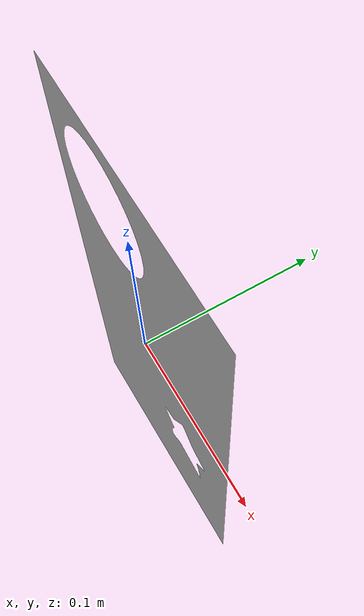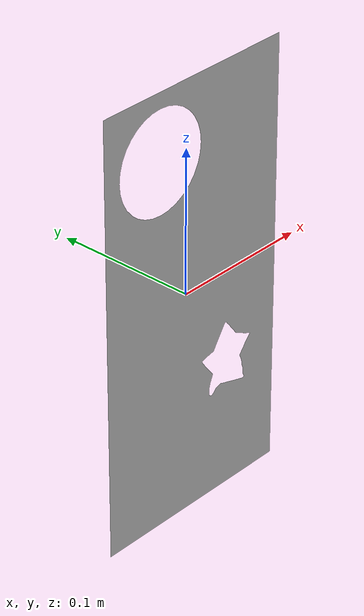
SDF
<?xml version="1.0" ?>
<sdf version="1.4">
  <model name="gman_torpedo">
    <static>true</static>
    <link name="link">
      <pose>0 0 0 0 0 0</pose>
      <must_be_base_link>1</must_be_base_link>
      <collision name="collision">
        <geometry>
          <mesh>
            <uri>model://gman_torpedo/meshes/GmanTorpedoCutout.dae</uri>
          </mesh>
        </geometry>
      </collision>
      <visual name="visual">
        <cast_shadows>false</cast_shadows>
        <geometry>
          <mesh>
            <uri>model://gman_torpedo/meshes/GmanTorpedoCutout.dae</uri>
          </mesh>
        </geometry>
      </visual>
    </link>
  </model>
</sdf>
